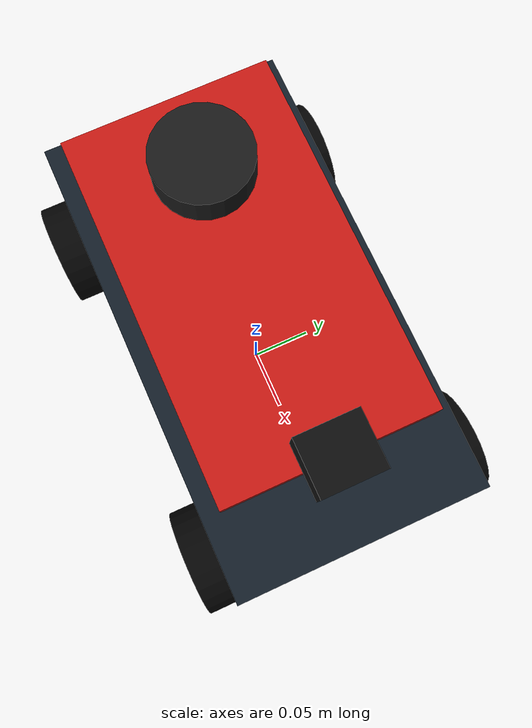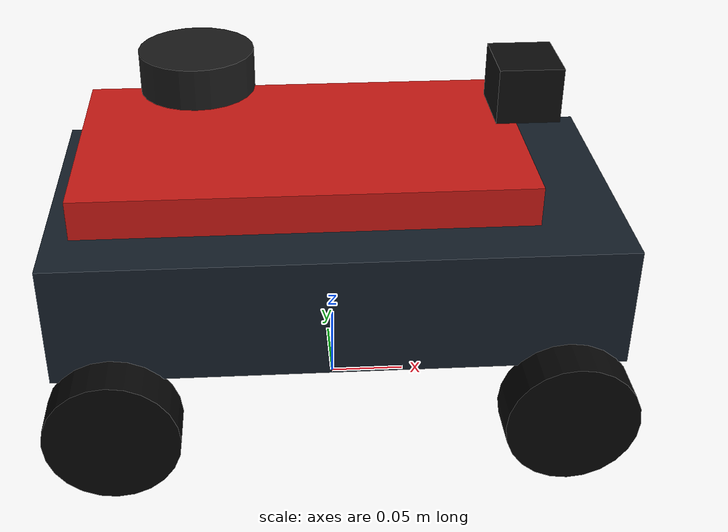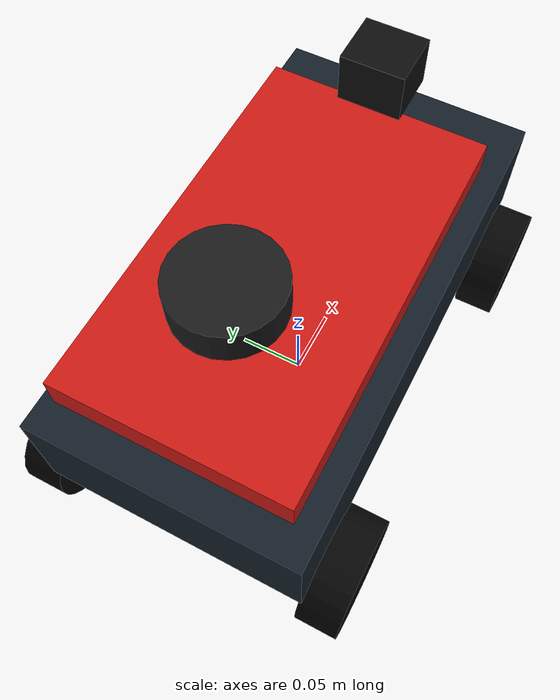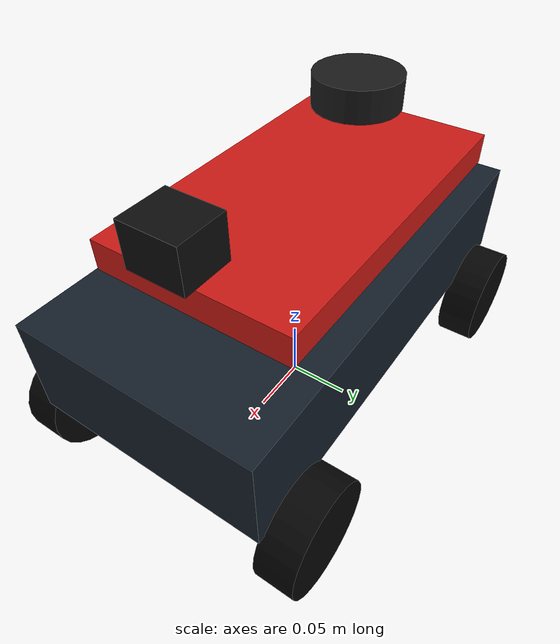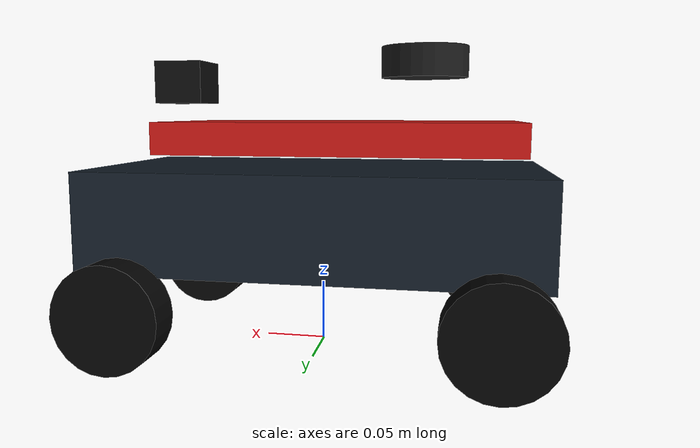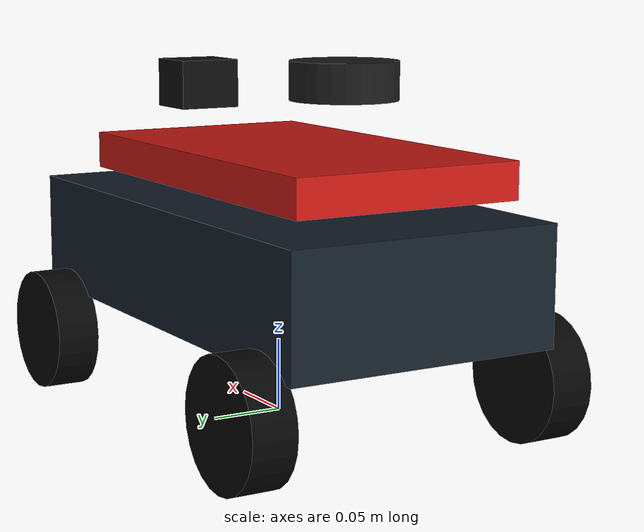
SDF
<?xml version="1.0" ?>
<sdf version="1.9">
  <model name="osracer_simple">
    <static>false</static>
    <pose>0 0 0.09 0 0 0</pose>

    <link name="base_link">
      <inertial>
        <mass>2.8</mass>
        <inertia>
          <ixx>0.030</ixx>
          <iyy>0.045</iyy>
          <izz>0.065</izz>
          <ixy>0</ixy>
          <ixz>0</ixz>
          <iyz>0</iyz>
        </inertia>
      </inertial>
      <collision name="chassis_collision">
        <pose>0 0 0.02 0 0 0</pose>
        <geometry>
          <box>
            <size>0.36 0.19 0.08</size>
          </box>
        </geometry>
      </collision>
      <visual name="chassis_visual">
        <pose>0 0 0.02 0 0 0</pose>
        <geometry>
          <box>
            <size>0.36 0.19 0.08</size>
          </box>
        </geometry>
        <material>
          <diffuse>0.08 0.12 0.16 1</diffuse>
        </material>
      </visual>
      <visual name="deck_visual">
        <pose>-0.02 0 0.085 0 0 0</pose>
        <geometry>
          <box>
            <size>0.28 0.16 0.025</size>
          </box>
        </geometry>
        <material>
          <diffuse>0.8 0.1 0.08 1</diffuse>
        </material>
      </visual>
      <visual name="laser_visual">
        <pose>-0.083 0 0.145 0 0 0</pose>
        <geometry>
          <cylinder>
            <radius>0.035</radius>
            <length>0.025</length>
          </cylinder>
        </geometry>
        <material>
          <diffuse>0.1 0.1 0.1 1</diffuse>
        </material>
      </visual>
      <sensor name="laser_sensor" type="gpu_lidar">
        <pose>-0.083 0 0.145 0 0 0</pose>
        <topic>/gazebo/scan</topic>
        <update_rate>20</update_rate>
        <lidar>
          <scan>
            <horizontal>
              <samples>541</samples>
              <resolution>1</resolution>
              <min_angle>-2.35619</min_angle>
              <max_angle>2.35619</max_angle>
            </horizontal>
          </scan>
          <range>
            <min>0.12</min>
            <max>8.0</max>
            <resolution>0.01</resolution>
          </range>
          <noise>
            <type>gaussian</type>
            <mean>0.0</mean>
            <stddev>0.01</stddev>
          </noise>
        </lidar>
        <always_on>true</always_on>
        <visualize>true</visualize>
      </sensor>
      <sensor name="imu_sensor" type="imu">
        <pose>0.04 0 0.06 0 0 0</pose>
        <topic>/gazebo/imu</topic>
        <update_rate>100</update_rate>
        <always_on>true</always_on>
      </sensor>
      <visual name="camera_visual">
        <pose>0.12 0 0.13 0 0 0</pose>
        <geometry>
          <box>
            <size>0.04 0.045 0.035</size>
          </box>
        </geometry>
        <material>
          <diffuse>0.05 0.05 0.05 1</diffuse>
        </material>
      </visual>
    </link>

    <link name="left_steering_hinge_link">
      <pose>0.1425 0.1075 0.0 0 0 0</pose>
      <inertial>
        <mass>0.05</mass>
        <inertia>
          <ixx>0.00004</ixx>
          <iyy>0.00004</iyy>
          <izz>0.00004</izz>
          <ixy>0</ixy>
          <ixz>0</ixz>
          <iyz>0</iyz>
        </inertia>
      </inertial>
    </link>

    <link name="right_steering_hinge_link">
      <pose>0.1425 -0.1075 0.0 0 0 0</pose>
      <inertial>
        <mass>0.05</mass>
        <inertia>
          <ixx>0.00004</ixx>
          <iyy>0.00004</iyy>
          <izz>0.00004</izz>
          <ixy>0</ixy>
          <ixz>0</ixz>
          <iyz>0</iyz>
        </inertia>
      </inertial>
    </link>

    <link name="Left_front_wheel_link">
      <pose>0.1425 0.1075 -0.0475 1.5708 0 0</pose>
      <inertial>
        <mass>0.10</mass>
        <inertia>
          <ixx>0.00009</ixx>
          <iyy>0.00009</iyy>
          <izz>0.00009</izz>
          <ixy>0</ixy>
          <ixz>0</ixz>
          <iyz>0</iyz>
        </inertia>
      </inertial>
      <collision name="collision">
        <geometry>
          <cylinder>
            <radius>0.0425</radius>
            <length>0.030</length>
          </cylinder>
        </geometry>
      </collision>
      <visual name="visual">
        <geometry>
          <cylinder>
            <radius>0.0425</radius>
            <length>0.030</length>
          </cylinder>
        </geometry>
        <material>
          <diffuse>0.02 0.02 0.02 1</diffuse>
        </material>
      </visual>
    </link>

    <link name="right_front_wheel_link">
      <pose>0.1425 -0.1075 -0.0475 1.5708 0 0</pose>
      <inertial>
        <mass>0.10</mass>
        <inertia>
          <ixx>0.00009</ixx>
          <iyy>0.00009</iyy>
          <izz>0.00009</izz>
          <ixy>0</ixy>
          <ixz>0</ixz>
          <iyz>0</iyz>
        </inertia>
      </inertial>
      <collision name="collision">
        <geometry>
          <cylinder>
            <radius>0.0425</radius>
            <length>0.030</length>
          </cylinder>
        </geometry>
      </collision>
      <visual name="visual">
        <geometry>
          <cylinder>
            <radius>0.0425</radius>
            <length>0.030</length>
          </cylinder>
        </geometry>
        <material>
          <diffuse>0.02 0.02 0.02 1</diffuse>
        </material>
      </visual>
    </link>

    <link name="left_rear_wheel_link">
      <pose>-0.1425 0.1075 -0.0475 1.5708 0 0</pose>
      <inertial>
        <mass>0.10</mass>
        <inertia>
          <ixx>0.00009</ixx>
          <iyy>0.00009</iyy>
          <izz>0.00009</izz>
          <ixy>0</ixy>
          <ixz>0</ixz>
          <iyz>0</iyz>
        </inertia>
      </inertial>
      <collision name="collision">
        <geometry>
          <cylinder>
            <radius>0.0425</radius>
            <length>0.030</length>
          </cylinder>
        </geometry>
      </collision>
      <visual name="visual">
        <geometry>
          <cylinder>
            <radius>0.0425</radius>
            <length>0.030</length>
          </cylinder>
        </geometry>
        <material>
          <diffuse>0.02 0.02 0.02 1</diffuse>
        </material>
      </visual>
    </link>

    <link name="right_rear_wheel_link">
      <pose>-0.1425 -0.1075 -0.0475 1.5708 0 0</pose>
      <inertial>
        <mass>0.10</mass>
        <inertia>
          <ixx>0.00009</ixx>
          <iyy>0.00009</iyy>
          <izz>0.00009</izz>
          <ixy>0</ixy>
          <ixz>0</ixz>
          <iyz>0</iyz>
        </inertia>
      </inertial>
      <collision name="collision">
        <geometry>
          <cylinder>
            <radius>0.0425</radius>
            <length>0.030</length>
          </cylinder>
        </geometry>
      </collision>
      <visual name="visual">
        <geometry>
          <cylinder>
            <radius>0.0425</radius>
            <length>0.030</length>
          </cylinder>
        </geometry>
        <material>
          <diffuse>0.02 0.02 0.02 1</diffuse>
        </material>
      </visual>
    </link>

    <joint name="left_steering_hinge_joint" type="revolute">
      <parent>base_link</parent>
      <child>left_steering_hinge_link</child>
      <pose>0 0 0 0 0 0</pose>
      <axis>
        <xyz>0 0 1</xyz>
        <limit>
          <lower>-0.5236</lower>
          <upper>0.5236</upper>
        </limit>
      </axis>
    </joint>

    <joint name="right_steering_hinge_joint" type="revolute">
      <parent>base_link</parent>
      <child>right_steering_hinge_link</child>
      <pose>0 0 0 0 0 0</pose>
      <axis>
        <xyz>0 0 1</xyz>
        <limit>
          <lower>-0.5236</lower>
          <upper>0.5236</upper>
        </limit>
      </axis>
    </joint>

    <joint name="Left_front_wheel_joint" type="revolute">
      <parent>left_steering_hinge_link</parent>
      <child>Left_front_wheel_link</child>
      <axis>
        <xyz>0 1 0</xyz>
      </axis>
    </joint>

    <joint name="right_front_wheel_joint" type="revolute">
      <parent>right_steering_hinge_link</parent>
      <child>right_front_wheel_link</child>
      <axis>
        <xyz>0 1 0</xyz>
      </axis>
    </joint>

    <joint name="left_rear_wheel_joint" type="revolute">
      <parent>base_link</parent>
      <child>left_rear_wheel_link</child>
      <axis>
        <xyz>0 1 0</xyz>
      </axis>
    </joint>

    <joint name="right_rear_wheel_joint" type="revolute">
      <parent>base_link</parent>
      <child>right_rear_wheel_link</child>
      <axis>
        <xyz>0 1 0</xyz>
      </axis>
    </joint>

    <plugin
      filename="ignition-gazebo-joint-position-controller-system"
      name="gz::sim::systems::JointPositionController">
      <joint_name>left_steering_hinge_joint</joint_name>
      <topic>/gazebo/left_steering_position</topic>
      <p_gain>8.0</p_gain>
      <i_gain>0.0</i_gain>
      <d_gain>0.2</d_gain>
      <cmd_max>80.0</cmd_max>
      <cmd_min>-80.0</cmd_min>
    </plugin>

    <plugin
      filename="ignition-gazebo-joint-position-controller-system"
      name="gz::sim::systems::JointPositionController">
      <joint_name>right_steering_hinge_joint</joint_name>
      <topic>/gazebo/right_steering_position</topic>
      <p_gain>8.0</p_gain>
      <i_gain>0.0</i_gain>
      <d_gain>0.2</d_gain>
      <cmd_max>80.0</cmd_max>
      <cmd_min>-80.0</cmd_min>
    </plugin>

    <plugin
      filename="ignition-gazebo-joint-controller-system"
      name="gz::sim::systems::JointController">
      <joint_name>Left_front_wheel_joint</joint_name>
    </plugin>

    <plugin
      filename="ignition-gazebo-joint-controller-system"
      name="gz::sim::systems::JointController">
      <joint_name>right_front_wheel_joint</joint_name>
    </plugin>

    <plugin
      filename="ignition-gazebo-joint-controller-system"
      name="gz::sim::systems::JointController">
      <joint_name>left_rear_wheel_joint</joint_name>
    </plugin>

    <plugin
      filename="ignition-gazebo-joint-controller-system"
      name="gz::sim::systems::JointController">
      <joint_name>right_rear_wheel_joint</joint_name>
    </plugin>
  </model>
</sdf>
